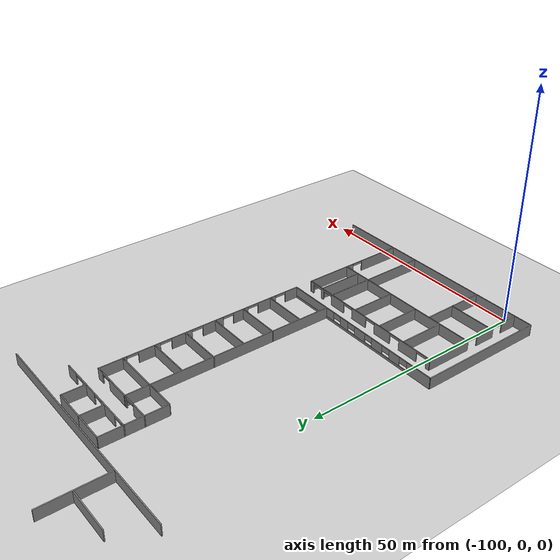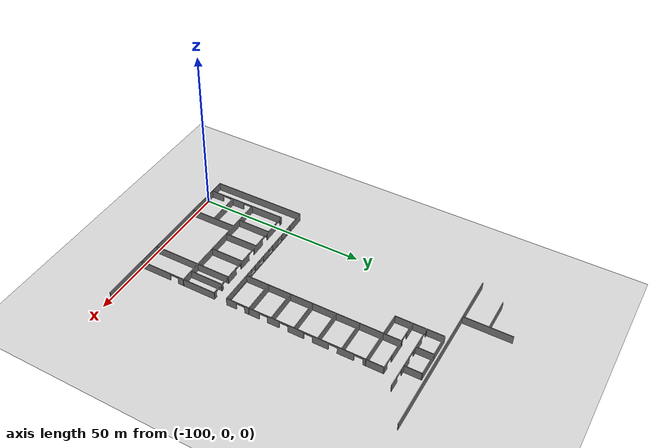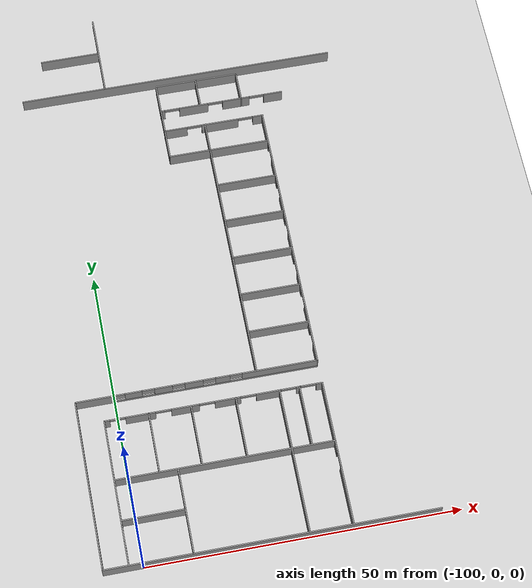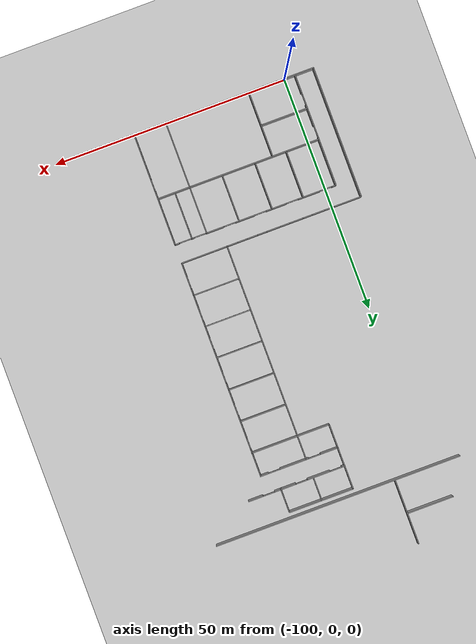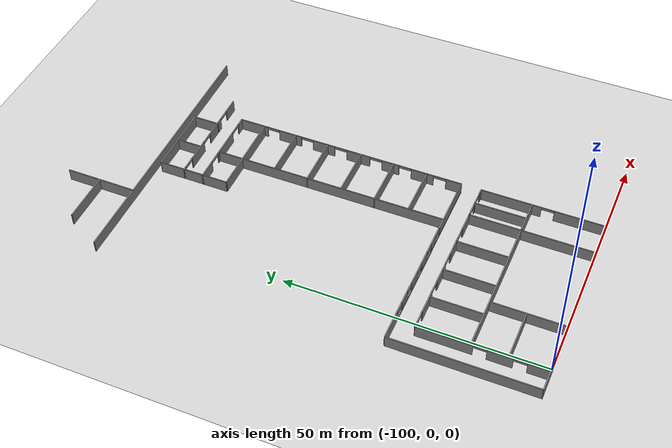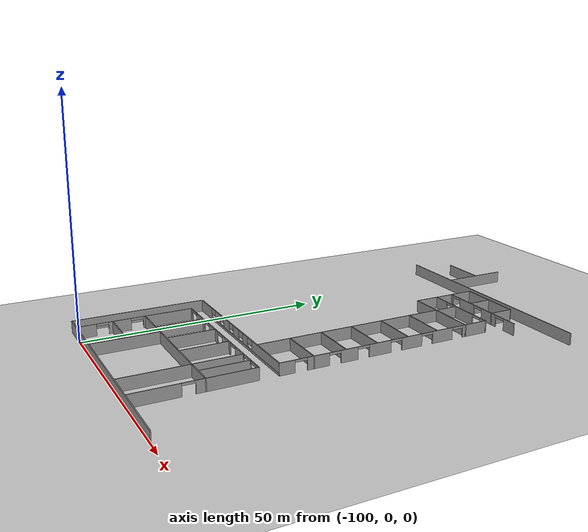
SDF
<sdf version="1.6">
 <world name="default">
  <model name="ground_plane">
   <static>1</static>
   <link name="link">
    <collision name="collision">
     <geometry><plane><normal>0 0 1</normal><size>100 100</size></plane></geometry>
     <surface><friction><ode><mu>100</mu><mu2>50</mu2></ode></friction></surface>
    </collision>
    <visual name="visual">
     <cast_shadows>0</cast_shadows>
     <geometry><plane><normal>0 0 1</normal><size>100 100</size></plane></geometry>
     <material>
      <script><uri>file://media/materials/scripts/gazebo.material</uri><name>Gazebo/Grey</name></script>
     </material>
    </visual>
   </link>
  </model>
  <model name="Jacaranda_v4_clone">
   <link name="Wall_0">
    <pose>-8.84429 26.2823 0 0 -0 0</pose>
    <visual name="Wall_0_Visual_0">
     <pose>-10.1136 0 1.25 0 -0 0</pose>
     <geometry><box><size>0.772872 0.2 2.5</size></box></geometry>
     <material>
      <script><uri>file://media/materials/scripts/gazebo.material</uri><name>Gazebo/Grey</name></script>
     </material>
    </visual>
    <collision name="Wall_0_Collision_0">
     <geometry><box><size>0.772872 0.2 2.5</size></box></geometry>
     <pose>-10.1136 0 1.25 0 -0 0</pose>
    </collision>
    <visual name="Wall_0_Visual_1">
     <pose>-4.7572 0 1.25 0 -0 0</pose>
     <geometry><box><size>4.93987 0.2 2.5</size></box></geometry>
     <material>
      <script><uri>file://media/materials/scripts/gazebo.material</uri><name>Gazebo/Grey</name></script>
     </material>
    </visual>
    <collision name="Wall_0_Collision_1">
     <geometry><box><size>4.93987 0.2 2.5</size></box></geometry>
     <pose>-4.7572 0 1.25 0 -0 0</pose>
    </collision>
    <visual name="Wall_0_Visual_2">
     <pose>2.52116 0 1.25 0 -0 0</pose>
     <geometry><box><size>4.61684 0.2 2.5</size></box></geometry>
     <material>
      <script><uri>file://media/materials/scripts/gazebo.material</uri><name>Gazebo/Grey</name></script>
     </material>
    </visual>
    <collision name="Wall_0_Collision_2">
     <geometry><box><size>4.61684 0.2 2.5</size></box></geometry>
     <pose>2.52116 0 1.25 0 -0 0</pose>
    </collision>
    <visual name="Wall_0_Visual_3">
     <pose>8.91479 0 1.25 0 -0 0</pose>
     <geometry><box><size>3.17042 0.2 2.5</size></box></geometry>
     <material>
      <script><uri>file://media/materials/scripts/gazebo.material</uri><name>Gazebo/Grey</name></script>
     </material>
    </visual>
    <collision name="Wall_0_Collision_3">
     <geometry><box><size>3.17042 0.2 2.5</size></box></geometry>
     <pose>8.91479 0 1.25 0 -0 0</pose>
    </collision>
    <visual name="Wall_0_Visual_4">
     <pose>-8.47713 0 2.25 0 -0 0</pose>
     <geometry><box><size>2.5 0.2 0.5</size></box></geometry>
     <material>
      <script><uri>file://media/materials/scripts/gazebo.material</uri><name>Gazebo/Grey</name></script>
     </material>
    </visual>
    <collision name="Wall_0_Collision_4">
     <geometry><box><size>2.5 0.2 0.5</size></box></geometry>
     <pose>-8.47713 0 2.25 0 -0 0</pose>
    </collision>
    <visual name="Wall_0_Visual_5">
     <pose>-1.03726 0 2.25 0 -0 0</pose>
     <geometry><box><size>2.5 0.2 0.5</size></box></geometry>
     <material>
      <script><uri>file://media/materials/scripts/gazebo.material</uri><name>Gazebo/Grey</name></script>
     </material>
    </visual>
    <collision name="Wall_0_Collision_5">
     <geometry><box><size>2.5 0.2 0.5</size></box></geometry>
     <pose>-1.03726 0 2.25 0 -0 0</pose>
    </collision>
    <visual name="Wall_0_Visual_6">
     <pose>6.07958 0 2.25 0 -0 0</pose>
     <geometry><box><size>2.5 0.2 0.5</size></box></geometry>
     <material>
      <script><uri>file://media/materials/scripts/gazebo.material</uri><name>Gazebo/Grey</name></script>
     </material>
    </visual>
    <collision name="Wall_0_Collision_6">
     <geometry><box><size>2.5 0.2 0.5</size></box></geometry>
     <pose>6.07958 0 2.25 0 -0 0</pose>
    </collision>
   </link>
   <link name="Wall_100">
    <collision name="Wall_100_Collision">
     <geometry><box><size>10 0.2 2.5</size></box></geometry>
     <pose>0 0 1.25 0 -0 0</pose>
    </collision>
    <visual name="Wall_100_Visual">
     <pose>0 0 1.25 0 -0 0</pose>
     <geometry><box><size>10 0.2 2.5</size></box></geometry>
     <material>
      <script><uri>file://media/materials/scripts/gazebo.material</uri><name>Gazebo/Grey</name></script>
     </material>
    </visual>
    <velocity_decay><linear>0</linear><angular>0</angular></velocity_decay>
    <pose>-6.16092 -32.9106 0 0 0 -1.5708</pose>
   </link>
   <link name="Wall_102">
    <collision name="Wall_102_Collision">
     <geometry><box><size>10 0.2 2.5</size></box></geometry>
     <pose>0 0 1.25 0 -0 0</pose>
    </collision>
    <visual name="Wall_102_Visual">
     <pose>0 0 1.25 0 -0 0</pose>
     <geometry><box><size>10 0.2 2.5</size></box></geometry>
     <material>
      <script><uri>file://media/materials/scripts/gazebo.material</uri><name>Gazebo/Grey</name></script>
     </material>
    </visual>
    <velocity_decay><linear>0</linear><angular>0</angular></velocity_decay>
    <pose>-16.4411 -32.898 0 0 0 -1.5708</pose>
   </link>
   <link name="Wall_104">
    <collision name="Wall_104_Collision">
     <geometry><box><size>10 0.2 2.5</size></box></geometry>
     <pose>0 0 1.25 0 -0 0</pose>
    </collision>
    <visual name="Wall_104_Visual">
     <pose>0 0 1.25 0 -0 0</pose>
     <geometry><box><size>10 0.2 2.5</size></box></geometry>
     <material>
      <script><uri>file://media/materials/scripts/gazebo.material</uri><name>Gazebo/Grey</name></script>
     </material>
    </visual>
    <velocity_decay><linear>0</linear><angular>0</angular></velocity_decay>
    <pose>-23.6073 -32.9162 0 0 0 -1.5708</pose>
   </link>
   <link name="Wall_106">
    <collision name="Wall_106_Collision">
     <geometry><box><size>10 0.2 2.5</size></box></geometry>
     <pose>0 0 1.25 0 -0 0</pose>
    </collision>
    <visual name="Wall_106_Visual">
     <pose>0 0 1.25 0 -0 0</pose>
     <geometry><box><size>10 0.2 2.5</size></box></geometry>
     <material>
      <script><uri>file://media/materials/scripts/gazebo.material</uri><name>Gazebo/Grey</name></script>
     </material>
    </visual>
    <velocity_decay><linear>0</linear><angular>0</angular></velocity_decay>
    <pose>-30.3649 -32.9482 0 0 0 -1.5708</pose>
   </link>
   <link name="Wall_108">
    <pose>-37.4695 -39.9617 0 0 0 -1.5708</pose>
    <visual name="Wall_108_Visual_0">
     <pose>-6.76156 0 1.25 0 -0 0</pose>
     <geometry><box><size>10.4769 0.2 2.5</size></box></geometry>
     <material>
      <script><uri>file://media/materials/scripts/gazebo.material</uri><name>Gazebo/Grey</name></script>
     </material>
    </visual>
    <collision name="Wall_108_Collision_0">
     <geometry><box><size>10.4769 0.2 2.5</size></box></geometry>
     <pose>-6.76156 0 1.25 0 -0 0</pose>
    </collision>
    <visual name="Wall_108_Visual_1">
     <pose>3.29825 0 1.25 0 -0 0</pose>
     <geometry><box><size>4.64276 0.2 2.5</size></box></geometry>
     <material>
      <script><uri>file://media/materials/scripts/gazebo.material</uri><name>Gazebo/Grey</name></script>
     </material>
    </visual>
    <collision name="Wall_108_Collision_1">
     <geometry><box><size>4.64276 0.2 2.5</size></box></geometry>
     <pose>3.29825 0 1.25 0 -0 0</pose>
    </collision>
    <visual name="Wall_108_Visual_2">
     <pose>10.0598 0 1.25 0 -0 0</pose>
     <geometry><box><size>3.88036 0.2 2.5</size></box></geometry>
     <material>
      <script><uri>file://media/materials/scripts/gazebo.material</uri><name>Gazebo/Grey</name></script>
     </material>
    </visual>
    <collision name="Wall_108_Collision_2">
     <geometry><box><size>3.88036 0.2 2.5</size></box></geometry>
     <pose>10.0598 0 1.25 0 -0 0</pose>
    </collision>
    <visual name="Wall_108_Visual_3">
     <pose>-0.273129 0 2.25 0 -0 0</pose>
     <geometry><box><size>2.5 0.2 0.5</size></box></geometry>
     <material>
      <script><uri>file://media/materials/scripts/gazebo.material</uri><name>Gazebo/Grey</name></script>
     </material>
    </visual>
    <collision name="Wall_108_Collision_3">
     <geometry><box><size>2.5 0.2 0.5</size></box></geometry>
     <pose>-0.273129 0 2.25 0 -0 0</pose>
    </collision>
    <visual name="Wall_108_Visual_4">
     <pose>6.86964 0 2.25 0 -0 0</pose>
     <geometry><box><size>2.5 0.2 0.5</size></box></geometry>
     <material>
      <script><uri>file://media/materials/scripts/gazebo.material</uri><name>Gazebo/Grey</name></script>
     </material>
    </visual>
    <collision name="Wall_108_Collision_4">
     <geometry><box><size>2.5 0.2 0.5</size></box></geometry>
     <pose>6.86964 0 2.25 0 -0 0</pose>
    </collision>
   </link>
   <link name="Wall_110">
    <collision name="Wall_110_Collision">
     <geometry><box><size>53 0.2 2.5</size></box></geometry>
     <pose>0 0 1.25 0 -0 0</pose>
    </collision>
    <visual name="Wall_110_Visual">
     <pose>0 0 1.25 0 -0 0</pose>
     <geometry><box><size>53 0.2 2.5</size></box></geometry>
     <material>
      <script><uri>file://media/materials/scripts/gazebo.material</uri><name>Gazebo/Grey</name></script>
     </material>
    </visual>
    <velocity_decay><linear>0</linear><angular>0</angular></velocity_decay>
    <pose>-15.0842 -52.0158 0 0 -0 0</pose>
   </link>
   <link name="Wall_112">
    <collision name="Wall_112_Collision">
     <geometry><box><size>14 0.2 2.5</size></box></geometry>
     <pose>0 0 1.25 0 -0 0</pose>
    </collision>
    <visual name="Wall_112_Visual">
     <pose>0 0 1.25 0 -0 0</pose>
     <geometry><box><size>14 0.2 2.5</size></box></geometry>
     <material>
      <script><uri>file://media/materials/scripts/gazebo.material</uri><name>Gazebo/Grey</name></script>
     </material>
    </visual>
    <velocity_decay><linear>0</linear><angular>0</angular></velocity_decay>
    <pose>-27.4151 -45.0631 0 0 0 -1.5708</pose>
   </link>
   <link name="Wall_114">
    <collision name="Wall_114_Collision">
     <geometry><box><size>28 0.2 2.5</size></box></geometry>
     <pose>0 0 1.25 0 -0 0</pose>
    </collision>
    <visual name="Wall_114_Visual">
     <pose>0 0 1.25 0 -0 0</pose>
     <geometry><box><size>28 0.2 2.5</size></box></geometry>
     <material>
      <script><uri>file://media/materials/scripts/gazebo.material</uri><name>Gazebo/Grey</name></script>
     </material>
    </visual>
    <velocity_decay><linear>0</linear><angular>0</angular></velocity_decay>
    <pose>-41.4842 -37.994 0 0 0 -1.5708</pose>
   </link>
   <link name="Wall_2">
    <collision name="Wall_2_Collision">
     <geometry><box><size>10 0.2 2.5</size></box></geometry>
     <pose>0 0 1.25 0 -0 0</pose>
    </collision>
    <visual name="Wall_2_Visual">
     <pose>0 0 1.25 0 -0 0</pose>
     <geometry><box><size>10 0.2 2.5</size></box></geometry>
     <material>
      <script><uri>file://media/materials/scripts/gazebo.material</uri><name>Gazebo/Grey</name></script>
     </material>
    </visual>
    <velocity_decay><linear>0</linear><angular>0</angular></velocity_decay>
    <pose>-7.44654 3.56016 0 0 -0 0</pose>
   </link>
   <link name="Wall_22">
    <collision name="Wall_22_Collision">
     <geometry><box><size>5 0.2 2.5</size></box></geometry>
     <pose>0 0 1.25 0 -0 0</pose>
    </collision>
    <visual name="Wall_22_Visual">
     <pose>0 0 1.25 0 -0 0</pose>
     <geometry><box><size>5 0.2 2.5</size></box></geometry>
     <material>
      <script><uri>file://media/materials/scripts/gazebo.material</uri><name>Gazebo/Grey</name></script>
     </material>
    </visual>
    <velocity_decay><linear>0</linear><angular>0</angular></velocity_decay>
    <pose>-19.2226 28.7685 0 0 -0 1.5708</pose>
   </link>
   <link name="Wall_24">
    <collision name="Wall_24_Collision">
     <geometry><box><size>7 0.2 2.5</size></box></geometry>
     <pose>0 0 1.25 0 -0 0</pose>
    </collision>
    <visual name="Wall_24_Visual">
     <pose>0 0 1.25 0 -0 0</pose>
     <geometry><box><size>7 0.2 2.5</size></box></geometry>
     <material>
      <script><uri>file://media/materials/scripts/gazebo.material</uri><name>Gazebo/Grey</name></script>
     </material>
    </visual>
    <velocity_decay><linear>0</linear><angular>0</angular></velocity_decay>
    <pose>-15.7827 31.2426 0 0 -0 0</pose>
   </link>
   <link name="Wall_26">
    <collision name="Wall_26_Collision">
     <geometry><box><size>5 0.2 2.5</size></box></geometry>
     <pose>0 0 1.25 0 -0 0</pose>
    </collision>
    <visual name="Wall_26_Visual">
     <pose>0 0 1.25 0 -0 0</pose>
     <geometry><box><size>5 0.2 2.5</size></box></geometry>
     <material>
      <script><uri>file://media/materials/scripts/gazebo.material</uri><name>Gazebo/Grey</name></script>
     </material>
    </visual>
    <velocity_decay><linear>0</linear><angular>0</angular></velocity_decay>
    <pose>-12.42 28.8426 0 0 0 -1.5708</pose>
   </link>
   <link name="Wall_29">
    <collision name="Wall_29_Collision">
     <geometry><box><size>7 0.2 2.5</size></box></geometry>
     <pose>0 0 1.25 0 -0 0</pose>
    </collision>
    <visual name="Wall_29_Visual">
     <pose>0 0 1.25 0 -0 0</pose>
     <geometry><box><size>7 0.2 2.5</size></box></geometry>
     <material>
      <script><uri>file://media/materials/scripts/gazebo.material</uri><name>Gazebo/Grey</name></script>
     </material>
    </visual>
    <velocity_decay><linear>0</linear><angular>0</angular></velocity_decay>
    <pose>-8.85634 31.2426 0 0 -0 0</pose>
   </link>
   <link name="Wall_31">
    <collision name="Wall_31_Collision">
     <geometry><box><size>5 0.2 2.5</size></box></geometry>
     <pose>0 0 1.25 0 -0 0</pose>
    </collision>
    <visual name="Wall_31_Visual">
     <pose>0 0 1.25 0 -0 0</pose>
     <geometry><box><size>5 0.2 2.5</size></box></geometry>
     <material>
      <script><uri>file://media/materials/scripts/gazebo.material</uri><name>Gazebo/Grey</name></script>
     </material>
    </visual>
    <velocity_decay><linear>0</linear><angular>0</angular></velocity_decay>
    <pose>-5.3828 28.6789 0 0 0 -1.5708</pose>
   </link>
   <link name="Wall_37">
    <pose>-2.48729 -39.9261 0 0 0 -1.5708</pose>
    <visual name="Wall_37_Visual_0">
     <pose>-6.07032 0 1.25 0 -0 0</pose>
     <geometry><box><size>11.8594 0.2 2.5</size></box></geometry>
     <material>
      <script><uri>file://media/materials/scripts/gazebo.material</uri><name>Gazebo/Grey</name></script>
     </material>
    </visual>
    <collision name="Wall_37_Collision_0">
     <geometry><box><size>11.8594 0.2 2.5</size></box></geometry>
     <pose>-6.07032 0 1.25 0 -0 0</pose>
    </collision>
    <visual name="Wall_37_Visual_1">
     <pose>7.17968 0 1.25 0 -0 0</pose>
     <geometry><box><size>9.64064 0.2 2.5</size></box></geometry>
     <material>
      <script><uri>file://media/materials/scripts/gazebo.material</uri><name>Gazebo/Grey</name></script>
     </material>
    </visual>
    <collision name="Wall_37_Collision_1">
     <geometry><box><size>9.64064 0.2 2.5</size></box></geometry>
     <pose>7.17968 0 1.25 0 -0 0</pose>
    </collision>
    <visual name="Wall_37_Visual_2">
     <pose>1.10936 0 2.25 0 -0 0</pose>
     <geometry><box><size>2.5 0.2 0.5</size></box></geometry>
     <material>
      <script><uri>file://media/materials/scripts/gazebo.material</uri><name>Gazebo/Grey</name></script>
     </material>
    </visual>
    <collision name="Wall_37_Collision_2">
     <geometry><box><size>2.5 0.2 0.5</size></box></geometry>
     <pose>1.10936 0 2.25 0 -0 0</pose>
    </collision>
   </link>
   <link name="Wall_39">
    <collision name="Wall_39_Collision">
     <geometry><box><size>4 0.2 2.5</size></box></geometry>
     <pose>0 0 1.25 0 -0 0</pose>
    </collision>
    <visual name="Wall_39_Visual">
     <pose>0 0 1.25 0 -0 0</pose>
     <geometry><box><size>4 0.2 2.5</size></box></geometry>
     <material>
      <script><uri>file://media/materials/scripts/gazebo.material</uri><name>Gazebo/Grey</name></script>
     </material>
    </visual>
    <velocity_decay><linear>0</linear><angular>0</angular></velocity_decay>
    <pose>-19.206 24.2121 0 0 0 -1.5708</pose>
   </link>
   <link name="Wall_41">
    <pose>-10.8339 22.3118 0 0 -0 0</pose>
    <visual name="Wall_41_Visual_0">
     <pose>-6.54675 0 1.25 0 -0 0</pose>
     <geometry><box><size>3.9065 0.2 2.5</size></box></geometry>
     <material>
      <script><uri>file://media/materials/scripts/gazebo.material</uri><name>Gazebo/Grey</name></script>
     </material>
    </visual>
    <collision name="Wall_41_Collision_0">
     <geometry><box><size>3.9065 0.2 2.5</size></box></geometry>
     <pose>-6.54675 0 1.25 0 -0 0</pose>
    </collision>
    <visual name="Wall_41_Visual_1">
     <pose>1.04072 0 1.25 0 -0 0</pose>
     <geometry><box><size>6.26843 0.2 2.5</size></box></geometry>
     <material>
      <script><uri>file://media/materials/scripts/gazebo.material</uri><name>Gazebo/Grey</name></script>
     </material>
    </visual>
    <collision name="Wall_41_Collision_1">
     <geometry><box><size>6.26843 0.2 2.5</size></box></geometry>
     <pose>1.04072 0 1.25 0 -0 0</pose>
    </collision>
    <visual name="Wall_41_Visual_2">
     <pose>7.58747 0 1.25 0 -0 0</pose>
     <geometry><box><size>1.82507 0.2 2.5</size></box></geometry>
     <material>
      <script><uri>file://media/materials/scripts/gazebo.material</uri><name>Gazebo/Grey</name></script>
     </material>
    </visual>
    <collision name="Wall_41_Collision_2">
     <geometry><box><size>1.82507 0.2 2.5</size></box></geometry>
     <pose>7.58747 0 1.25 0 -0 0</pose>
    </collision>
    <visual name="Wall_41_Visual_3">
     <pose>-3.3435 0 2.25 0 -0 0</pose>
     <geometry><box><size>2.5 0.2 0.5</size></box></geometry>
     <material>
      <script><uri>file://media/materials/scripts/gazebo.material</uri><name>Gazebo/Grey</name></script>
     </material>
    </visual>
    <collision name="Wall_41_Collision_3">
     <geometry><box><size>2.5 0.2 0.5</size></box></geometry>
     <pose>-3.3435 0 2.25 0 -0 0</pose>
    </collision>
    <visual name="Wall_41_Visual_4">
     <pose>5.42493 0 2.25 0 -0 0</pose>
     <geometry><box><size>2.5 0.2 0.5</size></box></geometry>
     <material>
      <script><uri>file://media/materials/scripts/gazebo.material</uri><name>Gazebo/Grey</name></script>
     </material>
    </visual>
    <collision name="Wall_41_Collision_4">
     <geometry><box><size>2.5 0.2 0.5</size></box></geometry>
     <pose>5.42493 0 2.25 0 -0 0</pose>
    </collision>
   </link>
   <link name="Wall_43">
    <pose>-2.46558 -0.8445 0 0 0 -1.5708</pose>
    <visual name="Wall_43_Visual_0">
     <pose>-20.2936 0 1.25 0 -0 0</pose>
     <geometry><box><size>5.88874 0.2 2.5</size></box></geometry>
     <material>
      <script><uri>file://media/materials/scripts/gazebo.material</uri><name>Gazebo/Grey</name></script>
     </material>
    </visual>
    <collision name="Wall_43_Collision_0">
     <geometry><box><size>5.88874 0.2 2.5</size></box></geometry>
     <pose>-20.2936 0 1.25 0 -0 0</pose>
    </collision>
    <visual name="Wall_43_Visual_1">
     <pose>-12.4598 0 1.25 0 -0 0</pose>
     <geometry><box><size>4.77894 0.2 2.5</size></box></geometry>
     <material>
      <script><uri>file://media/materials/scripts/gazebo.material</uri><name>Gazebo/Grey</name></script>
     </material>
    </visual>
    <collision name="Wall_43_Collision_1">
     <geometry><box><size>4.77894 0.2 2.5</size></box></geometry>
     <pose>-12.4598 0 1.25 0 -0 0</pose>
    </collision>
    <visual name="Wall_43_Visual_2">
     <pose>-5.24423 0 1.25 0 -0 0</pose>
     <geometry><box><size>4.65218 0.2 2.5</size></box></geometry>
     <material>
      <script><uri>file://media/materials/scripts/gazebo.material</uri><name>Gazebo/Grey</name></script>
     </material>
    </visual>
    <collision name="Wall_43_Collision_2">
     <geometry><box><size>4.65218 0.2 2.5</size></box></geometry>
     <pose>-5.24423 0 1.25 0 -0 0</pose>
    </collision>
    <visual name="Wall_43_Visual_3">
     <pose>2.00205 0 1.25 0 -0 0</pose>
     <geometry><box><size>4.84039 0.2 2.5</size></box></geometry>
     <material>
      <script><uri>file://media/materials/scripts/gazebo.material</uri><name>Gazebo/Grey</name></script>
     </material>
    </visual>
    <collision name="Wall_43_Collision_3">
     <geometry><box><size>4.84039 0.2 2.5</size></box></geometry>
     <pose>2.00205 0 1.25 0 -0 0</pose>
    </collision>
    <visual name="Wall_43_Visual_4">
     <pose>8.7199 0 1.25 0 -0 0</pose>
     <geometry><box><size>3.5953 0.2 2.5</size></box></geometry>
     <material>
      <script><uri>file://media/materials/scripts/gazebo.material</uri><name>Gazebo/Grey</name></script>
     </material>
    </visual>
    <collision name="Wall_43_Collision_4">
     <geometry><box><size>3.5953 0.2 2.5</size></box></geometry>
     <pose>8.7199 0 1.25 0 -0 0</pose>
    </collision>
    <visual name="Wall_43_Visual_5">
     <pose>15.2946 0 1.25 0 -0 0</pose>
     <geometry><box><size>4.55401 0.2 2.5</size></box></geometry>
     <material>
      <script><uri>file://media/materials/scripts/gazebo.material</uri><name>Gazebo/Grey</name></script>
     </material>
    </visual>
    <collision name="Wall_43_Collision_5">
     <geometry><box><size>4.55401 0.2 2.5</size></box></geometry>
     <pose>15.2946 0 1.25 0 -0 0</pose>
    </collision>
    <visual name="Wall_43_Visual_6">
     <pose>21.6548 0 1.25 0 -0 0</pose>
     <geometry><box><size>3.16644 0.2 2.5</size></box></geometry>
     <material>
      <script><uri>file://media/materials/scripts/gazebo.material</uri><name>Gazebo/Grey</name></script>
     </material>
    </visual>
    <collision name="Wall_43_Collision_6">
     <geometry><box><size>3.16644 0.2 2.5</size></box></geometry>
     <pose>21.6548 0 1.25 0 -0 0</pose>
    </collision>
    <visual name="Wall_43_Visual_7">
     <pose>-16.0993 0 2.25 0 -0 0</pose>
     <geometry><box><size>2.5 0.2 0.5</size></box></geometry>
     <material>
      <script><uri>file://media/materials/scripts/gazebo.material</uri><name>Gazebo/Grey</name></script>
     </material>
    </visual>
    <collision name="Wall_43_Collision_7">
     <geometry><box><size>2.5 0.2 0.5</size></box></geometry>
     <pose>-16.0993 0 2.25 0 -0 0</pose>
    </collision>
    <visual name="Wall_43_Visual_8">
     <pose>-8.82032 0 2.25 0 -0 0</pose>
     <geometry><box><size>2.5 0.2 0.5</size></box></geometry>
     <material>
      <script><uri>file://media/materials/scripts/gazebo.material</uri><name>Gazebo/Grey</name></script>
     </material>
    </visual>
    <collision name="Wall_43_Collision_8">
     <geometry><box><size>2.5 0.2 0.5</size></box></geometry>
     <pose>-8.82032 0 2.25 0 -0 0</pose>
    </collision>
    <visual name="Wall_43_Visual_9">
     <pose>-1.66814 0 2.25 0 -0 0</pose>
     <geometry><box><size>2.5 0.2 0.5</size></box></geometry>
     <material>
      <script><uri>file://media/materials/scripts/gazebo.material</uri><name>Gazebo/Grey</name></script>
     </material>
    </visual>
    <collision name="Wall_43_Collision_9">
     <geometry><box><size>2.5 0.2 0.5</size></box></geometry>
     <pose>-1.66814 0 2.25 0 -0 0</pose>
    </collision>
    <visual name="Wall_43_Visual_10">
     <pose>5.67225 0 2.25 0 -0 0</pose>
     <geometry><box><size>2.5 0.2 0.5</size></box></geometry>
     <material>
      <script><uri>file://media/materials/scripts/gazebo.material</uri><name>Gazebo/Grey</name></script>
     </material>
    </visual>
    <collision name="Wall_43_Collision_10">
     <geometry><box><size>2.5 0.2 0.5</size></box></geometry>
     <pose>5.67225 0 2.25 0 -0 0</pose>
    </collision>
    <visual name="Wall_43_Visual_11">
     <pose>11.7676 0 2.25 0 -0 0</pose>
     <geometry><box><size>2.5 0.2 0.5</size></box></geometry>
     <material>
      <script><uri>file://media/materials/scripts/gazebo.material</uri><name>Gazebo/Grey</name></script>
     </material>
    </visual>
    <collision name="Wall_43_Collision_11">
     <geometry><box><size>2.5 0.2 0.5</size></box></geometry>
     <pose>11.7676 0 2.25 0 -0 0</pose>
    </collision>
    <visual name="Wall_43_Visual_12">
     <pose>18.8216 0 2.25 0 -0 0</pose>
     <geometry><box><size>2.5 0.2 0.5</size></box></geometry>
     <material>
      <script><uri>file://media/materials/scripts/gazebo.material</uri><name>Gazebo/Grey</name></script>
     </material>
    </visual>
    <collision name="Wall_43_Collision_12">
     <geometry><box><size>2.5 0.2 0.5</size></box></geometry>
     <pose>18.8216 0 2.25 0 -0 0</pose>
    </collision>
   </link>
   <link name="Wall_45">
    <collision name="Wall_45_Collision">
     <geometry><box><size>5 0.2 2.5</size></box></geometry>
     <pose>0 0 1.25 0 -0 0</pose>
    </collision>
    <visual name="Wall_45_Visual">
     <pose>0 0 1.25 0 -0 0</pose>
     <geometry><box><size>5 0.2 2.5</size></box></geometry>
     <material>
      <script><uri>file://media/materials/scripts/gazebo.material</uri><name>Gazebo/Grey</name></script>
     </material>
    </visual>
    <velocity_decay><linear>0</linear><angular>0</angular></velocity_decay>
    <pose>-19.2149 19.8047 0 0 0 -1.5708</pose>
   </link>
   <link name="Wall_47">
    <collision name="Wall_47_Collision">
     <geometry><box><size>16.9069 0.2 2.5</size></box></geometry>
     <pose>0 0 1.25 0 -0 0</pose>
    </collision>
    <visual name="Wall_47_Visual">
     <pose>0 0 1.25 0 -0 0</pose>
     <geometry><box><size>16.9069 0.2 2.5</size></box></geometry>
     <material>
      <script><uri>file://media/materials/scripts/gazebo.material</uri><name>Gazebo/Grey</name></script>
     </material>
    </visual>
    <velocity_decay><linear>0</linear><angular>0</angular></velocity_decay>
    <pose>-10.7923 17.2628 0 0 -0 0</pose>
   </link>
   <link name="Wall_49">
    <collision name="Wall_49_Collision">
     <geometry><box><size>46.4765 0.2 2.5</size></box></geometry>
     <pose>0 0 1.25 0 -0 0</pose>
    </collision>
    <visual name="Wall_49_Visual">
     <pose>0 0 1.25 0 -0 0</pose>
     <geometry><box><size>46.4765 0.2 2.5</size></box></geometry>
     <material>
      <script><uri>file://media/materials/scripts/gazebo.material</uri><name>Gazebo/Grey</name></script>
     </material>
    </visual>
    <velocity_decay><linear>0</linear><angular>0</angular></velocity_decay>
    <pose>-12.3393 -0.801467 0 0 0 -1.5708</pose>
   </link>
   <link name="Wall_52">
    <collision name="Wall_52_Collision">
     <geometry><box><size>24.1932 0.2 2.5</size></box></geometry>
     <pose>0 0 1.25 0 -0 0</pose>
    </collision>
    <visual name="Wall_52_Visual">
     <pose>0 0 1.25 0 -0 0</pose>
     <geometry><box><size>24.1932 0.2 2.5</size></box></geometry>
     <material>
      <script><uri>file://media/materials/scripts/gazebo.material</uri><name>Gazebo/Grey</name></script>
     </material>
    </visual>
    <velocity_decay><linear>0</linear><angular>0</angular></velocity_decay>
    <pose>-9.37734 -40.0171 0 0 0 -1.5708</pose>
   </link>
   <link name="Wall_55">
    <collision name="Wall_55_Collision">
     <geometry><box><size>10 0.2 2.5</size></box></geometry>
     <pose>0 0 1.25 0 -0 0</pose>
    </collision>
    <visual name="Wall_55_Visual">
     <pose>0 0 1.25 0 -0 0</pose>
     <geometry><box><size>10 0.2 2.5</size></box></geometry>
     <material>
      <script><uri>file://media/materials/scripts/gazebo.material</uri><name>Gazebo/Grey</name></script>
     </material>
    </visual>
    <velocity_decay><linear>0</linear><angular>0</angular></velocity_decay>
    <pose>-7.39012 10.4267 0 0 -0 3.14159</pose>
   </link>
   <link name="Wall_59">
    <collision name="Wall_59_Collision">
     <geometry><box><size>10 0.2 2.5</size></box></geometry>
     <pose>0 0 1.25 0 -0 0</pose>
    </collision>
    <visual name="Wall_59_Visual">
     <pose>0 0 1.25 0 -0 0</pose>
     <geometry><box><size>10 0.2 2.5</size></box></geometry>
     <material>
      <script><uri>file://media/materials/scripts/gazebo.material</uri><name>Gazebo/Grey</name></script>
     </material>
    </visual>
    <velocity_decay><linear>0</linear><angular>0</angular></velocity_decay>
    <pose>-7.43285 -3.41806 0 0 -0 0</pose>
   </link>
   <link name="Wall_61">
    <collision name="Wall_61_Collision">
     <geometry><box><size>10 0.2 2.5</size></box></geometry>
     <pose>0 0 1.25 0 -0 0</pose>
    </collision>
    <visual name="Wall_61_Visual">
     <pose>0 0 1.25 0 -0 0</pose>
     <geometry><box><size>10 0.2 2.5</size></box></geometry>
     <material>
      <script><uri>file://media/materials/scripts/gazebo.material</uri><name>Gazebo/Grey</name></script>
     </material>
    </visual>
    <velocity_decay><linear>0</linear><angular>0</angular></velocity_decay>
    <pose>-7.44869 -10.2258 0 0 -0 0</pose>
   </link>
   <link name="Wall_63">
    <collision name="Wall_63_Collision">
     <geometry><box><size>10 0.2 2.5</size></box></geometry>
     <pose>0 0 1.25 0 -0 0</pose>
    </collision>
    <visual name="Wall_63_Visual">
     <pose>0 0 1.25 0 -0 0</pose>
     <geometry><box><size>10 0.2 2.5</size></box></geometry>
     <material>
      <script><uri>file://media/materials/scripts/gazebo.material</uri><name>Gazebo/Grey</name></script>
     </material>
    </visual>
    <velocity_decay><linear>0</linear><angular>0</angular></velocity_decay>
    <pose>-7.36232 -17.0326 0 0 -0 0</pose>
   </link>
   <link name="Wall_65">
    <pose>-21.9808 -24.0075 0 0 -0 0</pose>
    <visual name="Wall_65_Visual_0">
     <pose>-16.5353 0 1.25 0 -0 0</pose>
     <geometry><box><size>5.92942 0.2 2.5</size></box></geometry>
     <material>
      <script><uri>file://media/materials/scripts/gazebo.material</uri><name>Gazebo/Grey</name></script>
     </material>
    </visual>
    <collision name="Wall_65_Collision_0">
     <geometry><box><size>5.92942 0.2 2.5</size></box></geometry>
     <pose>-16.5353 0 1.25 0 -0 0</pose>
    </collision>
    <visual name="Wall_65_Visual_1">
     <pose>2.96471 0 0.25 0 -0 0</pose>
     <geometry><box><size>33.0706 0.2 0.5</size></box></geometry>
     <material>
      <script><uri>file://media/materials/scripts/gazebo.material</uri><name>Gazebo/Grey</name></script>
     </material>
    </visual>
    <collision name="Wall_65_Collision_1">
     <geometry><box><size>33.0706 0.2 0.5</size></box></geometry>
     <pose>2.96471 0 0.25 0 -0 0</pose>
    </collision>
    <visual name="Wall_65_Visual_2">
     <pose>-10.2002 0 1.5 0 -0 0</pose>
     <geometry><box><size>2.74072 0.2 2</size></box></geometry>
     <material>
      <script><uri>file://media/materials/scripts/gazebo.material</uri><name>Gazebo/Grey</name></script>
     </material>
    </visual>
    <collision name="Wall_65_Collision_2">
     <geometry><box><size>2.74072 0.2 2</size></box></geometry>
     <pose>-10.2002 0 1.5 0 -0 0</pose>
    </collision>
    <visual name="Wall_65_Visual_3">
     <pose>-5.38873 0 1.5 0 -0 0</pose>
     <geometry><box><size>2.88224 0.2 2</size></box></geometry>
     <material>
      <script><uri>file://media/materials/scripts/gazebo.material</uri><name>Gazebo/Grey</name></script>
     </material>
    </visual>
    <collision name="Wall_65_Collision_3">
     <geometry><box><size>2.88224 0.2 2</size></box></geometry>
     <pose>-5.38873 0 1.5 0 -0 0</pose>
    </collision>
    <visual name="Wall_65_Visual_4">
     <pose>-0.471118 0 1.5 0 -0 0</pose>
     <geometry><box><size>2.95299 0.2 2</size></box></geometry>
     <material>
      <script><uri>file://media/materials/scripts/gazebo.material</uri><name>Gazebo/Grey</name></script>
     </material>
    </visual>
    <collision name="Wall_65_Collision_4">
     <geometry><box><size>2.95299 0.2 2</size></box></geometry>
     <pose>-0.471118 0 1.5 0 -0 0</pose>
    </collision>
    <visual name="Wall_65_Visual_5">
     <pose>4.16347 0 1.5 0 -0 0</pose>
     <geometry><box><size>2.31618 0.2 2</size></box></geometry>
     <material>
      <script><uri>file://media/materials/scripts/gazebo.material</uri><name>Gazebo/Grey</name></script>
     </material>
    </visual>
    <collision name="Wall_65_Collision_5">
     <geometry><box><size>2.31618 0.2 2</size></box></geometry>
     <pose>4.16347 0 1.5 0 -0 0</pose>
    </collision>
    <visual name="Wall_65_Visual_6">
     <pose>13.4108 0 1.5 0 -0 0</pose>
     <geometry><box><size>12.1784 0.2 2</size></box></geometry>
     <material>
      <script><uri>file://media/materials/scripts/gazebo.material</uri><name>Gazebo/Grey</name></script>
     </material>
    </visual>
    <collision name="Wall_65_Collision_6">
     <geometry><box><size>12.1784 0.2 2</size></box></geometry>
     <pose>13.4108 0 1.5 0 -0 0</pose>
    </collision>
    <visual name="Wall_65_Visual_7">
     <pose>-12.5706 0 1.9 0 -0 0</pose>
     <geometry><box><size>2 0.2 1.2</size></box></geometry>
     <material>
      <script><uri>file://media/materials/scripts/gazebo.material</uri><name>Gazebo/Grey</name></script>
     </material>
    </visual>
    <collision name="Wall_65_Collision_7">
     <geometry><box><size>2 0.2 1.2</size></box></geometry>
     <pose>-12.5706 0 1.9 0 -0 0</pose>
    </collision>
    <visual name="Wall_65_Visual_8">
     <pose>-7.82985 0 1.9 0 -0 0</pose>
     <geometry><box><size>2 0.2 1.2</size></box></geometry>
     <material>
      <script><uri>file://media/materials/scripts/gazebo.material</uri><name>Gazebo/Grey</name></script>
     </material>
    </visual>
    <collision name="Wall_65_Collision_8">
     <geometry><box><size>2 0.2 1.2</size></box></geometry>
     <pose>-7.82985 0 1.9 0 -0 0</pose>
    </collision>
    <visual name="Wall_65_Visual_9">
     <pose>-2.94761 0 1.9 0 -0 0</pose>
     <geometry><box><size>2 0.2 1.2</size></box></geometry>
     <material>
      <script><uri>file://media/materials/scripts/gazebo.material</uri><name>Gazebo/Grey</name></script>
     </material>
    </visual>
    <collision name="Wall_65_Collision_9">
     <geometry><box><size>2 0.2 1.2</size></box></geometry>
     <pose>-2.94761 0 1.9 0 -0 0</pose>
    </collision>
    <visual name="Wall_65_Visual_10">
     <pose>2.00538 0 1.9 0 -0 0</pose>
     <geometry><box><size>2 0.2 1.2</size></box></geometry>
     <material>
      <script><uri>file://media/materials/scripts/gazebo.material</uri><name>Gazebo/Grey</name></script>
     </material>
    </visual>
    <collision name="Wall_65_Collision_10">
     <geometry><box><size>2 0.2 1.2</size></box></geometry>
     <pose>2.00538 0 1.9 0 -0 0</pose>
    </collision>
    <visual name="Wall_65_Visual_11">
     <pose>6.32156 0 1.9 0 -0 0</pose>
     <geometry><box><size>2 0.2 1.2</size></box></geometry>
     <material>
      <script><uri>file://media/materials/scripts/gazebo.material</uri><name>Gazebo/Grey</name></script>
     </material>
    </visual>
    <collision name="Wall_65_Collision_11">
     <geometry><box><size>2 0.2 1.2</size></box></geometry>
     <pose>6.32156 0 1.9 0 -0 0</pose>
    </collision>
   </link>
   <link name="Wall_89">
    <pose>-20.0123 -27.9879 0 0 -0 3.14159</pose>
    <visual name="Wall_89_Visual_0">
     <pose>-17.0213 0 1.25 0 -0 0</pose>
     <geometry><box><size>0.957415 0.2 2.5</size></box></geometry>
     <material>
      <script><uri>file://media/materials/scripts/gazebo.material</uri><name>Gazebo/Grey</name></script>
     </material>
    </visual>
    <collision name="Wall_89_Collision_0">
     <geometry><box><size>0.957415 0.2 2.5</size></box></geometry>
     <pose>-17.0213 0 1.25 0 -0 0</pose>
    </collision>
    <visual name="Wall_89_Visual_1">
     <pose>-13.6838 0 1.25 0 -0 0</pose>
     <geometry><box><size>0.717618 0.2 2.5</size></box></geometry>
     <material>
      <script><uri>file://media/materials/scripts/gazebo.material</uri><name>Gazebo/Grey</name></script>
     </material>
    </visual>
    <collision name="Wall_89_Collision_1">
     <geometry><box><size>0.717618 0.2 2.5</size></box></geometry>
     <pose>-13.6838 0 1.25 0 -0 0</pose>
    </collision>
    <visual name="Wall_89_Visual_2">
     <pose>-8.84673 0 1.25 0 -0 0</pose>
     <geometry><box><size>3.95648 0.2 2.5</size></box></geometry>
     <material>
      <script><uri>file://media/materials/scripts/gazebo.material</uri><name>Gazebo/Grey</name></script>
     </material>
    </visual>
    <collision name="Wall_89_Collision_2">
     <geometry><box><size>3.95648 0.2 2.5</size></box></geometry>
     <pose>-8.84673 0 1.25 0 -0 0</pose>
    </collision>
    <visual name="Wall_89_Visual_3">
     <pose>-2.29074 0 1.25 0 -0 0</pose>
     <geometry><box><size>4.15549 0.2 2.5</size></box></geometry>
     <material>
      <script><uri>file://media/materials/scripts/gazebo.material</uri><name>Gazebo/Grey</name></script>
     </material>
    </visual>
    <collision name="Wall_89_Collision_3">
     <geometry><box><size>4.15549 0.2 2.5</size></box></geometry>
     <pose>-2.29074 0 1.25 0 -0 0</pose>
    </collision>
    <visual name="Wall_89_Visual_4">
     <pose>4.53043 0 1.25 0 -0 0</pose>
     <geometry><box><size>4.48686 0.2 2.5</size></box></geometry>
     <material>
      <script><uri>file://media/materials/scripts/gazebo.material</uri><name>Gazebo/Grey</name></script>
     </material>
    </visual>
    <collision name="Wall_89_Collision_4">
     <geometry><box><size>4.48686 0.2 2.5</size></box></geometry>
     <pose>4.53043 0 1.25 0 -0 0</pose>
    </collision>
    <visual name="Wall_89_Visual_5">
     <pose>11.6732 0 1.25 0 -0 0</pose>
     <geometry><box><size>4.79864 0.2 2.5</size></box></geometry>
     <material>
      <script><uri>file://media/materials/scripts/gazebo.material</uri><name>Gazebo/Grey</name></script>
     </material>
    </visual>
    <collision name="Wall_89_Collision_5">
     <geometry><box><size>4.79864 0.2 2.5</size></box></geometry>
     <pose>11.6732 0 1.25 0 -0 0</pose>
    </collision>
    <visual name="Wall_89_Visual_6">
     <pose>17.0363 0 1.25 0 -0 0</pose>
     <geometry><box><size>0.927498 0.2 2.5</size></box></geometry>
     <material>
      <script><uri>file://media/materials/scripts/gazebo.material</uri><name>Gazebo/Grey</name></script>
     </material>
    </visual>
    <collision name="Wall_89_Collision_6">
     <geometry><box><size>0.927498 0.2 2.5</size></box></geometry>
     <pose>17.0363 0 1.25 0 -0 0</pose>
    </collision>
    <visual name="Wall_89_Visual_7">
     <pose>-15.2926 0 2.25 0 -0 0</pose>
     <geometry><box><size>2.5 0.2 0.5</size></box></geometry>
     <material>
      <script><uri>file://media/materials/scripts/gazebo.material</uri><name>Gazebo/Grey</name></script>
     </material>
    </visual>
    <collision name="Wall_89_Collision_7">
     <geometry><box><size>2.5 0.2 0.5</size></box></geometry>
     <pose>-15.2926 0 2.25 0 -0 0</pose>
    </collision>
    <visual name="Wall_89_Visual_8">
     <pose>-12.075 0 2.25 0 -0 0</pose>
     <geometry><box><size>2.5 0.2 0.5</size></box></geometry>
     <material>
      <script><uri>file://media/materials/scripts/gazebo.material</uri><name>Gazebo/Grey</name></script>
     </material>
    </visual>
    <collision name="Wall_89_Collision_8">
     <geometry><box><size>2.5 0.2 0.5</size></box></geometry>
     <pose>-12.075 0 2.25 0 -0 0</pose>
    </collision>
    <visual name="Wall_89_Visual_9">
     <pose>-5.61848 0 2.25 0 -0 0</pose>
     <geometry><box><size>2.5 0.2 0.5</size></box></geometry>
     <material>
      <script><uri>file://media/materials/scripts/gazebo.material</uri><name>Gazebo/Grey</name></script>
     </material>
    </visual>
    <collision name="Wall_89_Collision_9">
     <geometry><box><size>2.5 0.2 0.5</size></box></geometry>
     <pose>-5.61848 0 2.25 0 -0 0</pose>
    </collision>
    <visual name="Wall_89_Visual_10">
     <pose>1.037 0 2.25 0 -0 0</pose>
     <geometry><box><size>2.5 0.2 0.5</size></box></geometry>
     <material>
      <script><uri>file://media/materials/scripts/gazebo.material</uri><name>Gazebo/Grey</name></script>
     </material>
    </visual>
    <collision name="Wall_89_Collision_10">
     <geometry><box><size>2.5 0.2 0.5</size></box></geometry>
     <pose>1.037 0 2.25 0 -0 0</pose>
    </collision>
    <visual name="Wall_89_Visual_11">
     <pose>8.02387 0 2.25 0 -0 0</pose>
     <geometry><box><size>2.5 0.2 0.5</size></box></geometry>
     <material>
      <script><uri>file://media/materials/scripts/gazebo.material</uri><name>Gazebo/Grey</name></script>
     </material>
    </visual>
    <collision name="Wall_89_Collision_11">
     <geometry><box><size>2.5 0.2 0.5</size></box></geometry>
     <pose>8.02387 0 2.25 0 -0 0</pose>
    </collision>
    <visual name="Wall_89_Visual_12">
     <pose>15.3225 0 2.25 0 -0 0</pose>
     <geometry><box><size>2.5 0.2 0.5</size></box></geometry>
     <material>
      <script><uri>file://media/materials/scripts/gazebo.material</uri><name>Gazebo/Grey</name></script>
     </material>
    </visual>
    <collision name="Wall_89_Collision_12">
     <geometry><box><size>2.5 0.2 0.5</size></box></geometry>
     <pose>15.3225 0 2.25 0 -0 0</pose>
    </collision>
   </link>
   <link name="Wall_96">
    <collision name="Wall_96_Collision">
     <geometry><box><size>35 0.2 2.5</size></box></geometry>
     <pose>0 0 1.25 0 -0 0</pose>
    </collision>
    <visual name="Wall_96_Visual">
     <pose>0 0 1.25 0 -0 0</pose>
     <geometry><box><size>35 0.2 2.5</size></box></geometry>
     <material>
      <script><uri>file://media/materials/scripts/gazebo.material</uri><name>Gazebo/Grey</name></script>
     </material>
    </visual>
    <velocity_decay><linear>0</linear><angular>0</angular></velocity_decay>
    <pose>-19.8824 -37.9939 0 0 -0 3.14159</pose>
   </link>
   <link name="Wall_98">
    <collision name="Wall_98_Collision">
     <geometry><box><size>10 0.2 2.5</size></box></geometry>
     <pose>0 0 1.25 0 -0 0</pose>
    </collision>
    <visual name="Wall_98_Visual">
     <pose>0 0 1.25 0 -0 0</pose>
     <geometry><box><size>10 0.2 2.5</size></box></geometry>
     <material>
      <script><uri>file://media/materials/scripts/gazebo.material</uri><name>Gazebo/Grey</name></script>
     </material>
    </visual>
    <velocity_decay><linear>0</linear><angular>0</angular></velocity_decay>
    <pose>-32.3697 -44.7336 0 0 -0 0</pose>
   </link>
   <static>1</static>
   <pose>-64.7461 51.9933 0 0 -0 0</pose>
  </model>
  <model name="Jacaranda_v4_clone_1">
   <link name="Wall_110">
    <collision name="Wall_110_Collision">
     <geometry><box><size>53 0.2 2.5</size></box></geometry>
     <pose>0 0 1.25 0 -0 0</pose>
    </collision>
    <visual name="Wall_110_Visual">
     <pose>0 0 1.25 0 -0 0</pose>
     <geometry><box><size>53 0.2 2.5</size></box></geometry>
     <material>
      <script><uri>file://media/materials/scripts/gazebo.material</uri><name>Gazebo/Grey</name></script>
     </material>
    </visual>
    <velocity_decay><linear>0</linear><angular>0</angular></velocity_decay>
    <pose>-15.0842 -52.0158 0 0 -0 0</pose>
   </link>
   <link name="Wall_112">
    <collision name="Wall_112_Collision">
     <geometry><box><size>14 0.2 2.5</size></box></geometry>
     <pose>0 0 1.25 0 -0 0</pose>
    </collision>
    <visual name="Wall_112_Visual">
     <pose>0 0 1.25 0 -0 0</pose>
     <geometry><box><size>14 0.2 2.5</size></box></geometry>
     <material>
      <script><uri>file://media/materials/scripts/gazebo.material</uri><name>Gazebo/Grey</name></script>
     </material>
    </visual>
    <velocity_decay><linear>0</linear><angular>0</angular></velocity_decay>
    <pose>-27.4151 -45.0631 0 0 0 -1.5708</pose>
   </link>
   <link name="Wall_98">
    <collision name="Wall_98_Collision">
     <geometry><box><size>10 0.2 2.5</size></box></geometry>
     <pose>0 0 1.25 0 -0 0</pose>
    </collision>
    <visual name="Wall_98_Visual">
     <pose>0 0 1.25 0 -0 0</pose>
     <geometry><box><size>10 0.2 2.5</size></box></geometry>
     <material>
      <script><uri>file://media/materials/scripts/gazebo.material</uri><name>Gazebo/Grey</name></script>
     </material>
    </visual>
    <velocity_decay><linear>0</linear><angular>0</angular></velocity_decay>
    <pose>-32.3697 -44.7336 0 0 -0 0</pose>
   </link>
   <static>1</static>
   <pose>-65.1832 136.528 0 0 -0 0</pose>
  </model>
 </world>
</sdf>
